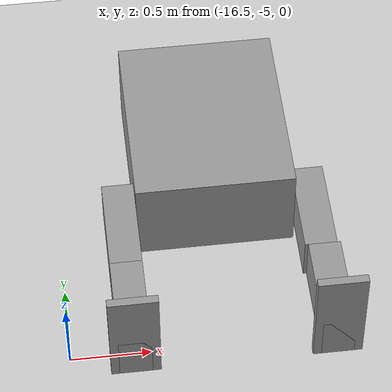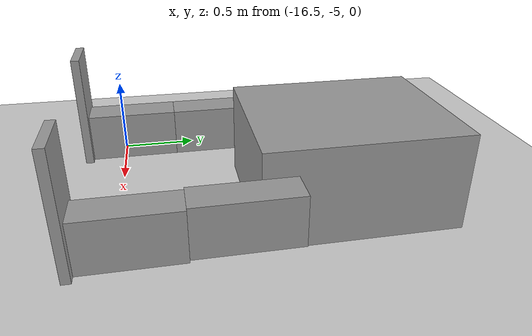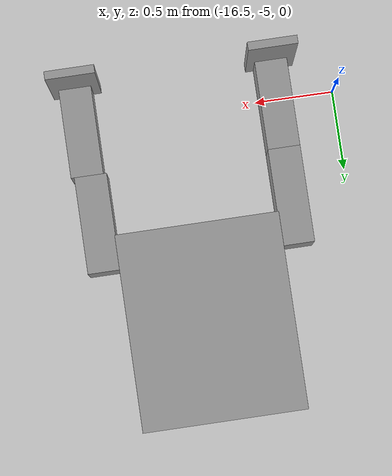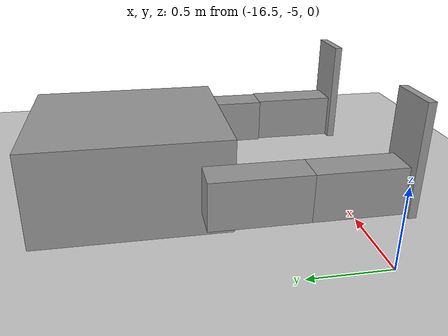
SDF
<sdf version="1.6">
 <world name="default">
  <model name="ground_plane">
   <static>1</static>
   <link name="link">
    <collision name="collision">
     <geometry><plane><normal>0 0 1</normal><size>100 100</size></plane></geometry>
     <surface><friction><ode><mu>100</mu><mu2>50</mu2></ode></friction></surface>
    </collision>
    <visual name="visual">
     <cast_shadows>0</cast_shadows>
     <geometry><plane><normal>0 0 1</normal><size>100 100</size></plane></geometry>
     <material>
      <script><uri>file://media/materials/scripts/gazebo.material</uri><name>Gazebo/Grey</name></script>
     </material>
    </visual>
   </link>
  </model>
  <model name="HumanoidRobot_clone">
   <link name="link_0">
    <pose>-0.773711 1.48908 2.03333 0 -0 0</pose>
    <inertial>
     <mass>1</mass>
     <inertia>
      <ixx>0.166667</ixx>
      <ixy>0</ixy>
      <ixz>0</ixz>
      <iyy>0.166667</iyy>
      <iyz>0</iyz>
      <izz>0.166667</izz>
     </inertia>
    </inertial>
    <visual name="visual">
     <geometry><box><size>1 0.6 1.2</size></box></geometry>
     <material>
      <lighting>1</lighting>
      <script><uri>file://media/materials/scripts/gazebo.material</uri><name>Gazebo/Grey</name></script>
      <shader type="pixel"><normal_map>__default__</normal_map></shader>
      <ambient>0.3 0.3 0.3 1</ambient>
      <diffuse>0.7 0.7 0.7 1</diffuse>
      <specular>0.01 0.01 0.01 1</specular>
      <emissive>0 0 0 1</emissive>
     </material>
    </visual>
    <collision name="collision">
     <geometry><box><size>1 0.6 1.2</size></box></geometry>
     <surface>
      <friction>
       <ode><mu>1</mu><mu2>1</mu2><fdir1>0 0 0</fdir1><slip1>0</slip1><slip2>0</slip2></ode>
       <torsional>
        <coefficient>1</coefficient>
        <patch_radius>0</patch_radius>
        <surface_radius>0</surface_radius>
        <use_patch_radius>1</use_patch_radius>
        <ode><slip>0</slip></ode>
       </torsional>
      </friction>
      <bounce><restitution_coefficient>0</restitution_coefficient><threshold>1e+06</threshold></bounce>
      <contact>
       <collide_without_contact>0</collide_without_contact>
       <collide_without_contact_bitmask>1</collide_without_contact_bitmask>
       <collide_bitmask>1</collide_bitmask>
       <ode>
        <soft_cfm>0</soft_cfm>
        <soft_erp>0.2</soft_erp>
        <kp>1e+13</kp>
        <kd>1</kd>
        <max_vel>0.01</max_vel>
        <min_depth>0</min_depth>
       </ode>
       <bullet>
        <split_impulse>1</split_impulse>
        <split_impulse_penetration_threshold>-0.01</split_impulse_penetration_threshold>
        <soft_cfm>0</soft_cfm>
        <soft_erp>0.2</soft_erp>
        <kp>1e+13</kp>
        <kd>1</kd>
       </bullet>
      </contact>
     </surface>
    </collision>
   </link>
   <link name="link_1">
    <pose>-0.173711 1.48908 1.33333 0 -0 0</pose>
    <inertial>
     <mass>1</mass>
     <inertia>
      <ixx>0.166667</ixx>
      <ixy>0</ixy>
      <ixz>0</ixz>
      <iyy>0.166667</iyy>
      <iyz>0</iyz>
      <izz>0.166667</izz>
     </inertia>
    </inertial>
    <visual name="visual">
     <geometry><box><size>0.2 0.3 0.6</size></box></geometry>
     <material>
      <lighting>1</lighting>
      <script><uri>file://media/materials/scripts/gazebo.material</uri><name>Gazebo/Grey</name></script>
      <shader type="pixel"><normal_map>__default__</normal_map></shader>
      <ambient>0.3 0.3 0.3 1</ambient>
      <diffuse>0.7 0.7 0.7 1</diffuse>
      <specular>0.01 0.01 0.01 1</specular>
      <emissive>0 0 0 1</emissive>
     </material>
    </visual>
    <collision name="collision">
     <geometry><box><size>0.2 0.3 0.6</size></box></geometry>
     <surface>
      <friction>
       <ode><mu>1</mu><mu2>1</mu2><fdir1>0 0 0</fdir1><slip1>0</slip1><slip2>0</slip2></ode>
       <torsional>
        <coefficient>1</coefficient>
        <patch_radius>0</patch_radius>
        <surface_radius>0</surface_radius>
        <use_patch_radius>1</use_patch_radius>
        <ode><slip>0</slip></ode>
       </torsional>
      </friction>
      <bounce><restitution_coefficient>0</restitution_coefficient><threshold>1e+06</threshold></bounce>
      <contact>
       <collide_without_contact>0</collide_without_contact>
       <collide_without_contact_bitmask>1</collide_without_contact_bitmask>
       <collide_bitmask>1</collide_bitmask>
       <ode>
        <soft_cfm>0</soft_cfm>
        <soft_erp>0.2</soft_erp>
        <kp>1e+13</kp>
        <kd>1</kd>
        <max_vel>0.01</max_vel>
        <min_depth>0</min_depth>
       </ode>
       <bullet>
        <split_impulse>1</split_impulse>
        <split_impulse_penetration_threshold>-0.01</split_impulse_penetration_threshold>
        <soft_cfm>0</soft_cfm>
        <soft_erp>0.2</soft_erp>
        <kp>1e+13</kp>
        <kd>1</kd>
       </bullet>
      </contact>
     </surface>
    </collision>
   </link>
   <link name="link_1_clone">
    <pose>-1.37371 1.48908 1.33333 0 -0 0</pose>
    <inertial>
     <mass>1</mass>
     <inertia>
      <ixx>0.166667</ixx>
      <ixy>0</ixy>
      <ixz>0</ixz>
      <iyy>0.166667</iyy>
      <iyz>0</iyz>
      <izz>0.166667</izz>
     </inertia>
    </inertial>
    <visual name="visual">
     <geometry><box><size>0.2 0.3 0.6</size></box></geometry>
     <material>
      <lighting>1</lighting>
      <script><uri>file://media/materials/scripts/gazebo.material</uri><name>Gazebo/Grey</name></script>
      <shader type="pixel"><normal_map>__default__</normal_map></shader>
      <ambient>0.3 0.3 0.3 1</ambient>
      <diffuse>0.7 0.7 0.7 1</diffuse>
      <specular>0.01 0.01 0.01 1</specular>
      <emissive>0 0 0 1</emissive>
     </material>
    </visual>
    <collision name="collision">
     <geometry><box><size>0.2 0.3 0.6</size></box></geometry>
     <surface>
      <friction>
       <ode><mu>1</mu><mu2>1</mu2><fdir1>0 0 0</fdir1><slip1>0</slip1><slip2>0</slip2></ode>
       <torsional>
        <coefficient>1</coefficient>
        <patch_radius>0</patch_radius>
        <surface_radius>0</surface_radius>
        <use_patch_radius>1</use_patch_radius>
        <ode><slip>0</slip></ode>
       </torsional>
      </friction>
      <bounce><restitution_coefficient>0</restitution_coefficient><threshold>1e+06</threshold></bounce>
      <contact>
       <collide_without_contact>0</collide_without_contact>
       <collide_without_contact_bitmask>1</collide_without_contact_bitmask>
       <collide_bitmask>1</collide_bitmask>
       <ode>
        <soft_cfm>0</soft_cfm>
        <soft_erp>0.2</soft_erp>
        <kp>1e+13</kp>
        <kd>1</kd>
        <max_vel>0.01</max_vel>
        <min_depth>0</min_depth>
       </ode>
       <bullet>
        <split_impulse>1</split_impulse>
        <split_impulse_penetration_threshold>-0.01</split_impulse_penetration_threshold>
        <soft_cfm>0</soft_cfm>
        <soft_erp>0.2</soft_erp>
        <kp>1e+13</kp>
        <kd>1</kd>
       </bullet>
      </contact>
     </surface>
    </collision>
   </link>
   <link name="link_1_clone_0">
    <pose>-0.15371 1.48908 0.733332 0 -0 0</pose>
    <inertial>
     <mass>1</mass>
     <inertia>
      <ixx>0.166667</ixx>
      <ixy>0</ixy>
      <ixz>0</ixz>
      <iyy>0.166667</iyy>
      <iyz>0</iyz>
      <izz>0.166667</izz>
     </inertia>
    </inertial>
    <visual name="visual">
     <geometry><box><size>0.2 0.3 0.6</size></box></geometry>
     <material>
      <lighting>1</lighting>
      <script><uri>file://media/materials/scripts/gazebo.material</uri><name>Gazebo/Grey</name></script>
      <shader type="pixel"><normal_map>__default__</normal_map></shader>
      <ambient>0.3 0.3 0.3 1</ambient>
      <diffuse>0.7 0.7 0.7 1</diffuse>
      <specular>0.01 0.01 0.01 1</specular>
      <emissive>0 0 0 1</emissive>
     </material>
    </visual>
    <collision name="collision">
     <geometry><box><size>0.2 0.3 0.6</size></box></geometry>
     <surface>
      <friction>
       <ode><mu>1</mu><mu2>1</mu2><fdir1>0 0 0</fdir1><slip1>0</slip1><slip2>0</slip2></ode>
       <torsional>
        <coefficient>1</coefficient>
        <patch_radius>0</patch_radius>
        <surface_radius>0</surface_radius>
        <use_patch_radius>1</use_patch_radius>
        <ode><slip>0</slip></ode>
       </torsional>
      </friction>
      <bounce><restitution_coefficient>0</restitution_coefficient><threshold>1e+06</threshold></bounce>
      <contact>
       <collide_without_contact>0</collide_without_contact>
       <collide_without_contact_bitmask>1</collide_without_contact_bitmask>
       <collide_bitmask>1</collide_bitmask>
       <ode>
        <soft_cfm>0</soft_cfm>
        <soft_erp>0.2</soft_erp>
        <kp>1e+13</kp>
        <kd>1</kd>
        <max_vel>0.01</max_vel>
        <min_depth>0</min_depth>
       </ode>
       <bullet>
        <split_impulse>1</split_impulse>
        <split_impulse_penetration_threshold>-0.01</split_impulse_penetration_threshold>
        <soft_cfm>0</soft_cfm>
        <soft_erp>0.2</soft_erp>
        <kp>1e+13</kp>
        <kd>1</kd>
       </bullet>
      </contact>
     </surface>
    </collision>
   </link>
   <link name="link_1_clone_1">
    <pose>-1.37371 1.48908 0.733332 0 -0 0</pose>
    <inertial>
     <mass>1</mass>
     <inertia>
      <ixx>0.166667</ixx>
      <ixy>0</ixy>
      <ixz>0</ixz>
      <iyy>0.166667</iyy>
      <iyz>0</iyz>
      <izz>0.166667</izz>
     </inertia>
    </inertial>
    <visual name="visual">
     <geometry><box><size>0.2 0.3 0.6</size></box></geometry>
     <material>
      <lighting>1</lighting>
      <script><uri>file://media/materials/scripts/gazebo.material</uri><name>Gazebo/Grey</name></script>
      <shader type="pixel"><normal_map>__default__</normal_map></shader>
      <ambient>0.3 0.3 0.3 1</ambient>
      <diffuse>0.7 0.7 0.7 1</diffuse>
      <specular>0.01 0.01 0.01 1</specular>
      <emissive>0 0 0 1</emissive>
     </material>
    </visual>
    <collision name="collision">
     <geometry><box><size>0.2 0.3 0.6</size></box></geometry>
     <surface>
      <friction>
       <ode><mu>1</mu><mu2>1</mu2><fdir1>0 0 0</fdir1><slip1>0</slip1><slip2>0</slip2></ode>
       <torsional>
        <coefficient>1</coefficient>
        <patch_radius>0</patch_radius>
        <surface_radius>0</surface_radius>
        <use_patch_radius>1</use_patch_radius>
        <ode><slip>0</slip></ode>
       </torsional>
      </friction>
      <bounce><restitution_coefficient>0</restitution_coefficient><threshold>1e+06</threshold></bounce>
      <contact>
       <collide_without_contact>0</collide_without_contact>
       <collide_without_contact_bitmask>1</collide_without_contact_bitmask>
       <collide_bitmask>1</collide_bitmask>
       <ode>
        <soft_cfm>0</soft_cfm>
        <soft_erp>0.2</soft_erp>
        <kp>1e+13</kp>
        <kd>1</kd>
        <max_vel>0.01</max_vel>
        <min_depth>0</min_depth>
       </ode>
       <bullet>
        <split_impulse>1</split_impulse>
        <split_impulse_penetration_threshold>-0.01</split_impulse_penetration_threshold>
        <soft_cfm>0</soft_cfm>
        <soft_erp>0.2</soft_erp>
        <kp>1e+13</kp>
        <kd>1</kd>
       </bullet>
      </contact>
     </surface>
    </collision>
   </link>
   <link name="link_2">
    <pose>-0.15371 1.28908 0.458332 0 -0 0</pose>
    <inertial>
     <mass>1</mass>
     <inertia>
      <ixx>0.166667</ixx>
      <ixy>0</ixy>
      <ixz>0</ixz>
      <iyy>0.166667</iyy>
      <iyz>0</iyz>
      <izz>0.166667</izz>
     </inertia>
    </inertial>
    <visual name="visual">
     <geometry><box><size>0.3 0.7 0.05</size></box></geometry>
     <material>
      <lighting>1</lighting>
      <script><uri>file://media/materials/scripts/gazebo.material</uri><name>Gazebo/Grey</name></script>
      <shader type="pixel"><normal_map>__default__</normal_map></shader>
      <ambient>0.3 0.3 0.3 1</ambient>
      <diffuse>0.7 0.7 0.7 1</diffuse>
      <specular>0.01 0.01 0.01 1</specular>
      <emissive>0 0 0 1</emissive>
     </material>
    </visual>
    <collision name="collision">
     <geometry><box><size>0.3 0.7 0.05</size></box></geometry>
     <surface>
      <friction>
       <ode><mu>1</mu><mu2>1</mu2><fdir1>0 0 0</fdir1><slip1>0</slip1><slip2>0</slip2></ode>
       <torsional>
        <coefficient>1</coefficient>
        <patch_radius>0</patch_radius>
        <surface_radius>0</surface_radius>
        <use_patch_radius>1</use_patch_radius>
        <ode><slip>0</slip></ode>
       </torsional>
      </friction>
      <bounce><restitution_coefficient>0</restitution_coefficient><threshold>1e+06</threshold></bounce>
      <contact>
       <collide_without_contact>0</collide_without_contact>
       <collide_without_contact_bitmask>1</collide_without_contact_bitmask>
       <collide_bitmask>1</collide_bitmask>
       <ode>
        <soft_cfm>0</soft_cfm>
        <soft_erp>0.2</soft_erp>
        <kp>1e+13</kp>
        <kd>1</kd>
        <max_vel>0.01</max_vel>
        <min_depth>0</min_depth>
       </ode>
       <bullet>
        <split_impulse>1</split_impulse>
        <split_impulse_penetration_threshold>-0.01</split_impulse_penetration_threshold>
        <soft_cfm>0</soft_cfm>
        <soft_erp>0.2</soft_erp>
        <kp>1e+13</kp>
        <kd>1</kd>
       </bullet>
      </contact>
     </surface>
    </collision>
   </link>
   <link name="link_2_clone">
    <pose>-1.37371 1.28908 0.458332 0 -0 0</pose>
    <inertial>
     <mass>1</mass>
     <inertia>
      <ixx>0.166667</ixx>
      <ixy>0</ixy>
      <ixz>0</ixz>
      <iyy>0.166667</iyy>
      <iyz>0</iyz>
      <izz>0.166667</izz>
     </inertia>
    </inertial>
    <visual name="visual">
     <geometry><box><size>0.3 0.7 0.05</size></box></geometry>
     <material>
      <lighting>1</lighting>
      <script><uri>file://media/materials/scripts/gazebo.material</uri><name>Gazebo/Grey</name></script>
      <shader type="pixel"><normal_map>__default__</normal_map></shader>
      <ambient>0.3 0.3 0.3 1</ambient>
      <diffuse>0.7 0.7 0.7 1</diffuse>
      <specular>0.01 0.01 0.01 1</specular>
      <emissive>0 0 0 1</emissive>
     </material>
    </visual>
    <collision name="collision">
     <geometry><box><size>0.3 0.7 0.05</size></box></geometry>
     <surface>
      <friction>
       <ode><mu>1</mu><mu2>1</mu2><fdir1>0 0 0</fdir1><slip1>0</slip1><slip2>0</slip2></ode>
       <torsional>
        <coefficient>1</coefficient>
        <patch_radius>0</patch_radius>
        <surface_radius>0</surface_radius>
        <use_patch_radius>1</use_patch_radius>
        <ode><slip>0</slip></ode>
       </torsional>
      </friction>
      <bounce><restitution_coefficient>0</restitution_coefficient><threshold>1e+06</threshold></bounce>
      <contact>
       <collide_without_contact>0</collide_without_contact>
       <collide_without_contact_bitmask>1</collide_without_contact_bitmask>
       <collide_bitmask>1</collide_bitmask>
       <ode>
        <soft_cfm>0</soft_cfm>
        <soft_erp>0.2</soft_erp>
        <kp>1e+13</kp>
        <kd>1</kd>
        <max_vel>0.01</max_vel>
        <min_depth>0</min_depth>
       </ode>
       <bullet>
        <split_impulse>1</split_impulse>
        <split_impulse_penetration_threshold>-0.01</split_impulse_penetration_threshold>
        <soft_cfm>0</soft_cfm>
        <soft_erp>0.2</soft_erp>
        <kp>1e+13</kp>
        <kd>1</kd>
       </bullet>
      </contact>
     </surface>
    </collision>
   </link>
   <joint name="link_0_JOINT_0" type="revolute">
    <parent>link_0</parent>
    <child>link_1</child>
    <pose>0 0 0.2 0 -0 0</pose>
    <axis>
     <xyz>1 0 0</xyz>
     <use_parent_model_frame>0</use_parent_model_frame>
     <limit>
      <lower>-1.79769e+308</lower>
      <upper>1.79769e+308</upper>
      <effort>-1</effort>
      <velocity>-1</velocity>
     </limit>
     <dynamics>
      <spring_reference>0</spring_reference>
      <spring_stiffness>0</spring_stiffness>
      <damping>0</damping>
      <friction>0</friction>
     </dynamics>
    </axis>
    <physics>
     <ode><limit><cfm>0</cfm><erp>0.2</erp></limit><suspension><cfm>0</cfm><erp>0.2</erp></suspension></ode>
    </physics>
   </joint>
   <joint name="link_0_JOINT_1" type="revolute">
    <parent>link_0</parent>
    <child>link_1_clone</child>
    <pose>0 0 0.2 0 -0 0</pose>
    <axis>
     <xyz>1 0 0</xyz>
     <use_parent_model_frame>0</use_parent_model_frame>
     <limit>
      <lower>-1.79769e+308</lower>
      <upper>1.79769e+308</upper>
      <effort>-1</effort>
      <velocity>-1</velocity>
     </limit>
     <dynamics>
      <spring_reference>0</spring_reference>
      <spring_stiffness>0</spring_stiffness>
      <damping>0</damping>
     </dynamics>
    </axis>
    <physics>
     <ode><limit><cfm>0</cfm><erp>0.2</erp></limit><suspension><cfm>0</cfm><erp>0.2</erp></suspension></ode>
    </physics>
   </joint>
   <joint name="link_1_JOINT_2" type="revolute">
    <parent>link_1</parent>
    <child>link_1_clone_0</child>
    <pose>0 0 0.3 0 -0 0</pose>
    <axis>
     <xyz>1 0 0</xyz>
     <use_parent_model_frame>0</use_parent_model_frame>
     <limit>
      <lower>-1.79769e+308</lower>
      <upper>1.79769e+308</upper>
      <effort>-1</effort>
      <velocity>-1</velocity>
     </limit>
     <dynamics>
      <spring_reference>0</spring_reference>
      <spring_stiffness>0</spring_stiffness>
      <damping>0</damping>
     </dynamics>
    </axis>
    <physics>
     <ode><limit><cfm>0</cfm><erp>0.2</erp></limit><suspension><cfm>0</cfm><erp>0.2</erp></suspension></ode>
    </physics>
   </joint>
   <joint name="link_1_clone_0_JOINT_5" type="revolute">
    <parent>link_1_clone_0</parent>
    <child>link_2</child>
    <pose>0 0.1 0 0 -0 0</pose>
    <axis>
     <xyz>1 0 0</xyz>
     <use_parent_model_frame>0</use_parent_model_frame>
     <limit>
      <lower>-1.79769e+308</lower>
      <upper>1.79769e+308</upper>
      <effort>-1</effort>
      <velocity>-1</velocity>
     </limit>
     <dynamics>
      <spring_reference>0</spring_reference>
      <spring_stiffness>0</spring_stiffness>
      <damping>0</damping>
      <friction>0</friction>
     </dynamics>
    </axis>
    <physics>
     <ode><limit><cfm>0</cfm><erp>0.2</erp></limit><suspension><cfm>0</cfm><erp>0.2</erp></suspension></ode>
    </physics>
   </joint>
   <joint name="link_1_clone_1_JOINT_6" type="revolute">
    <parent>link_1_clone_1</parent>
    <child>link_2_clone</child>
    <pose>0 0.1 0 0 -0 0</pose>
    <axis>
     <xyz>1 0 0</xyz>
     <use_parent_model_frame>0</use_parent_model_frame>
     <limit>
      <lower>-1.79769e+308</lower>
      <upper>1.79769e+308</upper>
      <effort>-1</effort>
      <velocity>-1</velocity>
     </limit>
     <dynamics>
      <spring_reference>0</spring_reference>
      <spring_stiffness>0</spring_stiffness>
      <damping>0</damping>
      <friction>0</friction>
     </dynamics>
    </axis>
    <physics>
     <ode><limit><cfm>0</cfm><erp>0.2</erp></limit><suspension><cfm>0</cfm><erp>0.2</erp></suspension></ode>
    </physics>
   </joint>
   <joint name="link_1_clone_JOINT_3" type="revolute">
    <parent>link_1_clone</parent>
    <child>link_1_clone_1</child>
    <pose>0 0 0.3 0 -0 0</pose>
    <axis>
     <xyz>1 0 0</xyz>
     <use_parent_model_frame>0</use_parent_model_frame>
     <limit>
      <lower>-1.79769e+308</lower>
      <upper>1.79769e+308</upper>
      <effort>-1</effort>
      <velocity>-1</velocity>
     </limit>
     <dynamics>
      <spring_reference>0</spring_reference>
      <spring_stiffness>0</spring_stiffness>
      <damping>0</damping>
     </dynamics>
    </axis>
    <physics>
     <ode><limit><cfm>0</cfm><erp>0.2</erp></limit><suspension><cfm>0</cfm><erp>0.2</erp></suspension></ode>
    </physics>
   </joint>
   <static>0</static>
   <pose>-14.7339 -5.65949 1.78908 -1.5708 -0 0.003202</pose>
  </model>
 </world>
</sdf>
